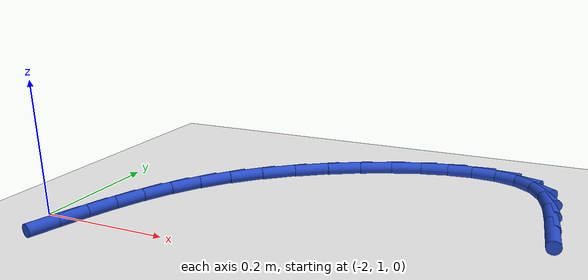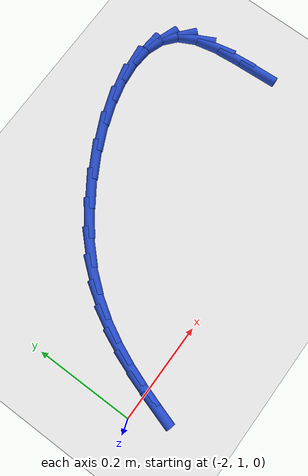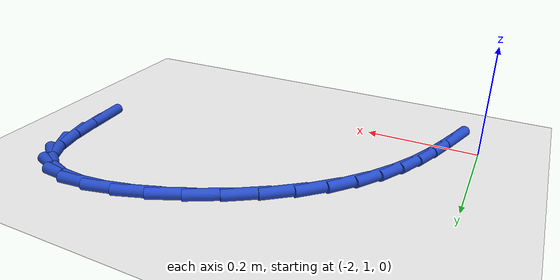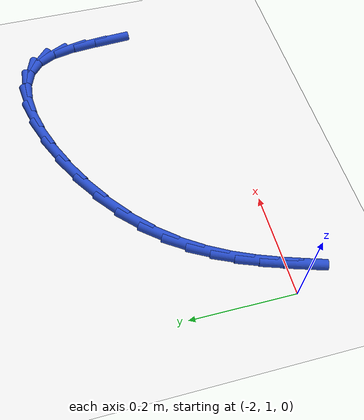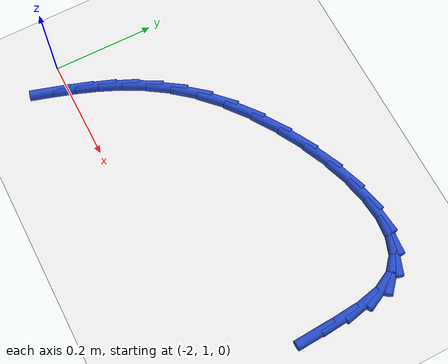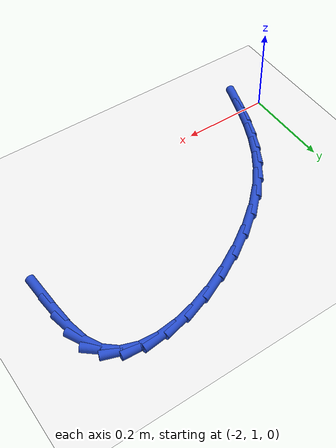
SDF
<sdf version="1.6">
 <world name="default">
  <model name="ground_plane">
   <static>1</static>
   <link name="link">
    <collision name="collision">
     <geometry><plane><normal>0 0 1</normal><size>100 100</size></plane></geometry>
     <surface><friction><ode><mu>100</mu><mu2>50</mu2></ode></friction></surface>
    </collision>
    <visual name="visual">
     <cast_shadows>0</cast_shadows>
     <geometry><plane><normal>0 0 1</normal><size>100 100</size></plane></geometry>
     <material>
      <script><uri>file://media/materials/scripts/gazebo.material</uri><name>Gazebo/WhiteGlow</name></script>
     </material>
    </visual>
   </link>
  </model>
  <model name="line">
   <link name="link_42">
    <pose>-1.311448847396816 1.1905047306768972 0.01 0 1.57 -1.5144469195663282</pose>
    <collision name="collision">
     <geometry><cylinder><radius>0.01</radius><length>0.08</length></cylinder></geometry>
    </collision>
    <visual name="visual">
     <material>
      <script><name>Gazebo/Blue</name><uri>file://media/materials/scripts/gazebo.material</uri></script>
     </material>
     <geometry><cylinder><radius>0.01</radius><length>0.08</length></cylinder></geometry>
    </visual>
   </link>
   <link name="link_43">
    <pose>-1.314286051071564 1.240801623390283 0.01 0 1.57 -1.480154377767913</pose>
    <collision name="collision">
     <geometry><cylinder><radius>0.01</radius><length>0.08</length></cylinder></geometry>
    </collision>
    <visual name="visual">
     <material>
      <script><name>Gazebo/Blue</name><uri>file://media/materials/scripts/gazebo.material</uri></script>
     </material>
     <geometry><cylinder><radius>0.01</radius><length>0.08</length></cylinder></geometry>
    </visual>
   </link>
   <link name="link_44">
    <pose>-1.3186502521019146 1.2888173874762514 0.01 0 1.57 -1.359667528855535</pose>
    <collision name="collision">
     <geometry><cylinder><radius>0.01</radius><length>0.08</length></cylinder></geometry>
    </collision>
    <visual name="visual">
     <material>
      <script><name>Gazebo/Blue</name><uri>file://media/materials/scripts/gazebo.material</uri></script>
     </material>
     <geometry><cylinder><radius>0.01</radius><length>0.08</length></cylinder></geometry>
    </visual>
   </link>
   <link name="link_45">
    <pose>-1.3277430342028946 1.3312430266126254 0.01 0 1.57 -1.1013886630562095</pose>
    <collision name="collision">
     <geometry><cylinder><radius>0.01</radius><length>0.08</length></cylinder></geometry>
    </collision>
    <visual name="visual">
     <material>
      <script><name>Gazebo/Blue</name><uri>file://media/materials/scripts/gazebo.material</uri></script>
     </material>
     <geometry><cylinder><radius>0.01</radius><length>0.08</length></cylinder></geometry>
    </visual>
   </link>
   <link name="link_46">
    <pose>-1.3447538314881593 1.3647802798740278 0.01 0 1.57 -0.7059317822519278</pose>
    <collision name="collision">
     <geometry><cylinder><radius>0.01</radius><length>0.08</length></cylinder></geometry>
    </collision>
    <visual name="visual">
     <material>
      <script><name>Gazebo/Blue</name><uri>file://media/materials/scripts/gazebo.material</uri></script>
     </material>
     <geometry><cylinder><radius>0.01</radius><length>0.08</length></cylinder></geometry>
    </visual>
   </link>
   <link name="link_47">
    <pose>-1.3713631487655171 1.3874641773907088 0.01 0 1.57 -0.34293012655371324</pose>
    <collision name="collision">
     <geometry><cylinder><radius>0.01</radius><length>0.08</length></cylinder></geometry>
    </collision>
    <visual name="visual">
     <material>
      <script><name>Gazebo/Blue</name><uri>file://media/materials/scripts/gazebo.material</uri></script>
     </material>
     <geometry><cylinder><radius>0.01</radius><length>0.08</length></cylinder></geometry>
    </visual>
   </link>
   <link name="link_48">
    <pose>-1.4062998065734147 1.3999378597061307 0.01 0 1.57 -0.07689080052161715</pose>
    <collision name="collision">
     <geometry><cylinder><radius>0.01</radius><length>0.08</length></cylinder></geometry>
    </collision>
    <visual name="visual">
     <material>
      <script><name>Gazebo/Blue</name><uri>file://media/materials/scripts/gazebo.material</uri></script>
     </material>
     <geometry><cylinder><radius>0.01</radius><length>0.08</length></cylinder></geometry>
    </visual>
   </link>
   <link name="link_49">
    <pose>-1.447950529627325 1.4031467434870772 0.01 0 1.57 0.10887963148186547</pose>
    <collision name="collision">
     <geometry><cylinder><radius>0.01</radius><length>0.08</length></cylinder></geometry>
    </collision>
    <visual name="visual">
     <material>
      <script><name>Gazebo/Blue</name><uri>file://media/materials/scripts/gazebo.material</uri></script>
     </material>
     <geometry><cylinder><radius>0.01</radius><length>0.08</length></cylinder></geometry>
    </visual>
   </link>
   <link name="link_50">
    <pose>-1.4947020426427213 1.398036245400332 0.01 0 1.57 0.2435676177190749</pose>
    <collision name="collision">
     <geometry><cylinder><radius>0.01</radius><length>0.08</length></cylinder></geometry>
    </collision>
    <visual name="visual">
     <material>
      <script><name>Gazebo/Blue</name><uri>file://media/materials/scripts/gazebo.material</uri></script>
     </material>
     <geometry><cylinder><radius>0.01</radius><length>0.08</length></cylinder></geometry>
    </visual>
   </link>
   <link name="link_51">
    <pose>-1.5449410703350772 1.3855517821126788 0.01 0 1.57 0.34813925829511083</pose>
    <collision name="collision">
     <geometry><cylinder><radius>0.01</radius><length>0.08</length></cylinder></geometry>
    </collision>
    <visual name="visual">
     <material>
      <script><name>Gazebo/Blue</name><uri>file://media/materials/scripts/gazebo.material</uri></script>
     </material>
     <geometry><cylinder><radius>0.01</radius><length>0.08</length></cylinder></geometry>
    </visual>
   </link>
   <link name="link_52">
    <pose>-1.5970543374198667 1.3666387702909015 0.01 0 1.57 0.435918802975157</pose>
    <collision name="collision">
     <geometry><cylinder><radius>0.01</radius><length>0.08</length></cylinder></geometry>
    </collision>
    <visual name="visual">
     <material>
      <script><name>Gazebo/Blue</name><uri>file://media/materials/scripts/gazebo.material</uri></script>
     </material>
     <geometry><cylinder><radius>0.01</radius><length>0.08</length></cylinder></geometry>
    </visual>
   </link>
   <link name="link_53">
    <pose>-1.649428568612562 1.342242626601784 0.01 0 1.57 0.5158669880957145</pose>
    <collision name="collision">
     <geometry><cylinder><radius>0.01</radius><length>0.08</length></cylinder></geometry>
    </collision>
    <visual name="visual">
     <material>
      <script><name>Gazebo/Blue</name><uri>file://media/materials/scripts/gazebo.material</uri></script>
     </material>
     <geometry><cylinder><radius>0.01</radius><length>0.08</length></cylinder></geometry>
    </visual>
   </link>
   <link name="link_54">
    <pose>-1.7004504886286371 1.31330876771211 0.01 0 1.57 0.5950084919057425</pose>
    <collision name="collision">
     <geometry><cylinder><radius>0.01</radius><length>0.08</length></cylinder></geometry>
    </collision>
    <visual name="visual">
     <material>
      <script><name>Gazebo/Blue</name><uri>file://media/materials/scripts/gazebo.material</uri></script>
     </material>
     <geometry><cylinder><radius>0.01</radius><length>0.08</length></cylinder></geometry>
    </visual>
   </link>
   <link name="link_55">
    <pose>-1.748506822183566 1.2807826102886628 0.01 0 1.57 0.6802014326812069</pose>
    <collision name="collision">
     <geometry><cylinder><radius>0.01</radius><length>0.08</length></cylinder></geometry>
    </collision>
    <visual name="visual">
     <material>
      <script><name>Gazebo/Blue</name><uri>file://media/materials/scripts/gazebo.material</uri></script>
     </material>
     <geometry><cylinder><radius>0.01</radius><length>0.08</length></cylinder></geometry>
    </visual>
   </link>
   <link name="link_56">
    <pose>-1.7919842939928206 1.2456095709982264 0.01 0 1.57 0.7790559082850623</pose>
    <collision name="collision">
     <geometry><cylinder><radius>0.01</radius><length>0.08</length></cylinder></geometry>
    </collision>
    <visual name="visual">
     <material>
      <script><name>Gazebo/Blue</name><uri>file://media/materials/scripts/gazebo.material</uri></script>
     </material>
     <geometry><cylinder><radius>0.01</radius><length>0.08</length></cylinder></geometry>
    </visual>
   </link>
   <link name="link_57">
    <pose>-1.8293564521310786 1.2087084790759823 0.01 0 1.57 0.8866111480364854</pose>
    <collision name="collision">
     <geometry><cylinder><radius>0.01</radius><length>0.08</length></cylinder></geometry>
    </collision>
    <visual name="visual">
     <material>
      <script><name>Gazebo/Blue</name><uri>file://media/materials/scripts/gazebo.material</uri></script>
     </material>
     <geometry><cylinder><radius>0.01</radius><length>0.08</length></cylinder></geometry>
    </visual>
   </link>
   <link name="link_58">
    <pose>-1.8604516114212468 1.1705833011142934 0.01 0 1.57 0.9898453960514884</pose>
    <collision name="collision">
     <geometry><cylinder><radius>0.01</radius><length>0.08</length></cylinder></geometry>
    </collision>
    <visual name="visual">
     <material>
      <script><name>Gazebo/Blue</name><uri>file://media/materials/scripts/gazebo.material</uri></script>
     </material>
     <geometry><cylinder><radius>0.01</radius><length>0.08</length></cylinder></geometry>
    </visual>
   </link>
   <link name="link_59">
    <pose>-1.8861701947621046 1.1314096980467707 0.01 0 1.57 1.082611386101768</pose>
    <collision name="collision">
     <geometry><cylinder><radius>0.01</radius><length>0.08</length></cylinder></geometry>
    </collision>
    <visual name="visual">
     <material>
      <script><name>Gazebo/Blue</name><uri>file://media/materials/scripts/gazebo.material</uri></script>
     </material>
     <geometry><cylinder><radius>0.01</radius><length>0.08</length></cylinder></geometry>
    </visual>
   </link>
   <link name="link_60">
    <pose>-1.9074419445305126 1.0913543524672606 0.01 0 1.57 1.1600833930629615</pose>
    <collision name="collision">
     <geometry><cylinder><radius>0.01</radius><length>0.08</length></cylinder></geometry>
    </collision>
    <visual name="visual">
     <material>
      <script><name>Gazebo/Blue</name><uri>file://media/materials/scripts/gazebo.material</uri></script>
     </material>
     <geometry><cylinder><radius>0.01</radius><length>0.08</length></cylinder></geometry>
    </visual>
   </link>
   <link name="link_61">
    <pose>-1.9251966031033325 1.0505839469696105 0.01 0 1.57 1.21898699913098</pose>
    <collision name="collision">
     <geometry><cylinder><radius>0.01</radius><length>0.08</length></cylinder></geometry>
    </collision>
    <visual name="visual">
     <material>
      <script><name>Gazebo/Blue</name><uri>file://media/materials/scripts/gazebo.material</uri></script>
     </material>
     <geometry><cylinder><radius>0.01</radius><length>0.08</length></cylinder></geometry>
    </visual>
   </link>
   <link name="link_62">
    <pose>-1.9403639128574246 1.009265164147668 0.01 0 1.57 1.257496318050746</pose>
    <collision name="collision">
     <geometry><cylinder><radius>0.01</radius><length>0.08</length></cylinder></geometry>
    </collision>
    <visual name="visual">
     <material>
      <script><name>Gazebo/Blue</name><uri>file://media/materials/scripts/gazebo.material</uri></script>
     </material>
     <geometry><cylinder><radius>0.01</radius><length>0.08</length></cylinder></geometry>
    </visual>
   </link>
   <link name="link_63">
    <pose>-1.9538736161696502 0.9675646865952794 0.01 0 1.57 1.2760436209046493</pose>
    <collision name="collision">
     <geometry><cylinder><radius>0.01</radius><length>0.08</length></cylinder></geometry>
    </collision>
    <visual name="visual">
     <material>
      <script><name>Gazebo/Blue</name><uri>file://media/materials/scripts/gazebo.material</uri></script>
     </material>
     <geometry><cylinder><radius>0.01</radius><length>0.08</length></cylinder></geometry>
    </visual>
   </link>
  </model>
 </world>
</sdf>
